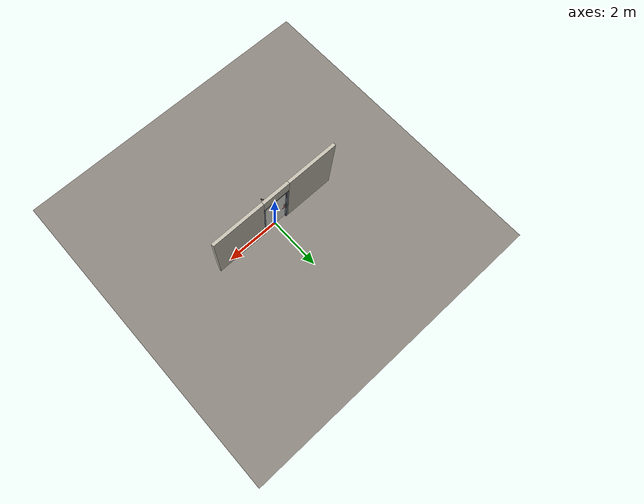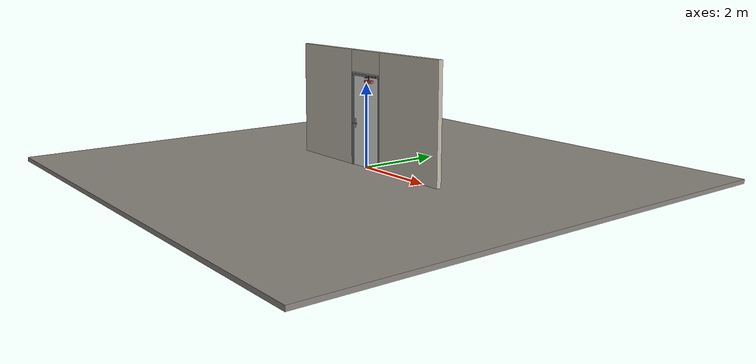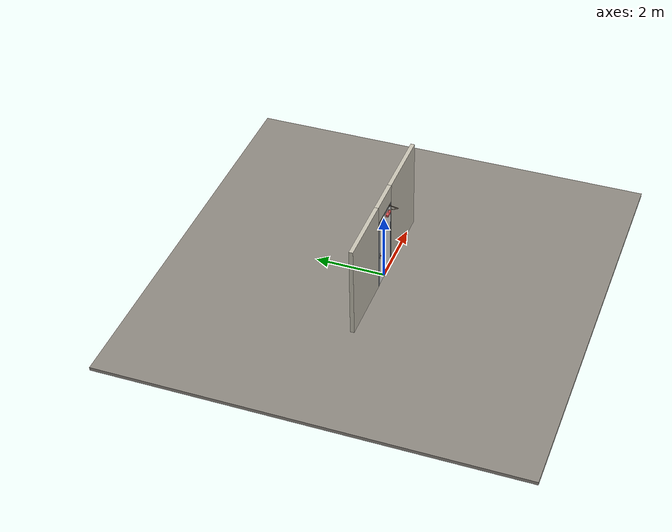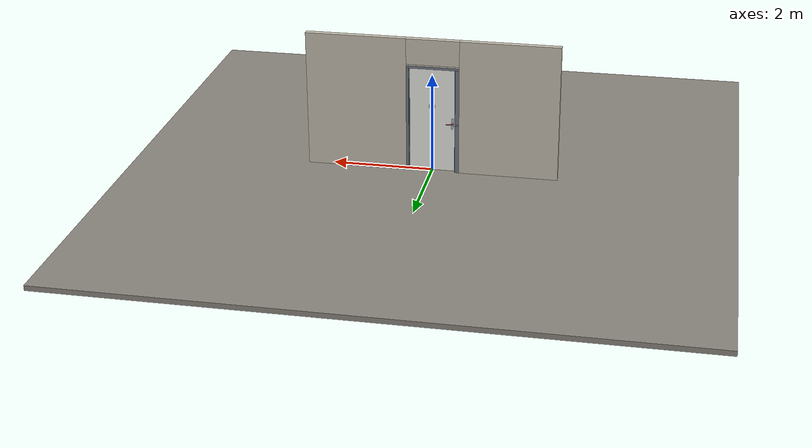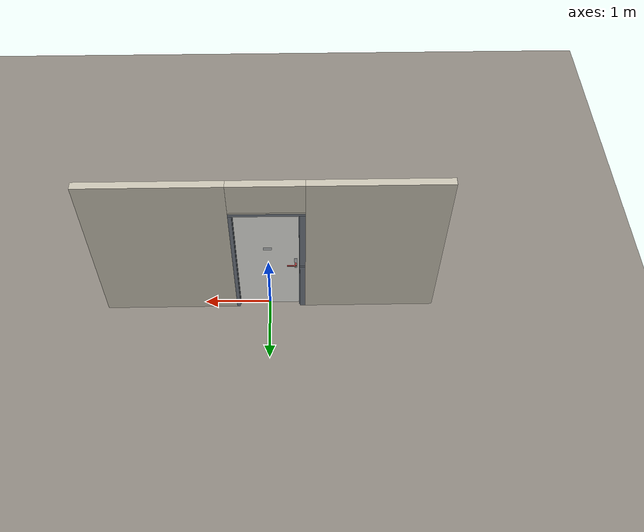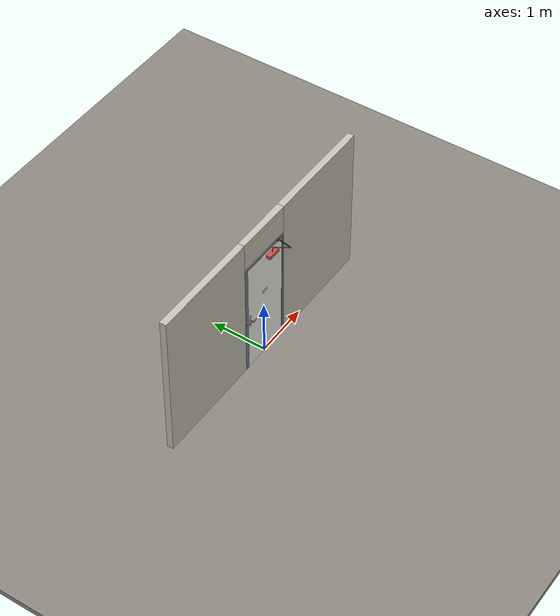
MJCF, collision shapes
<?xml version="1.0" ?>
<mujoco model="db0294_swing_single_full">
  <compiler angle="radian" meshdir="../../hardware" texturedir="../../textures" autolimits="true" inertiafromgeom="false"/>
  <option timestep="0.002" integrator="implicitfast" cone="elliptic" impratio="10" noslip_iterations="3">
    <flag multiccd="enable"/>
  </option>
  <size memory="16M"/>
  <default>
    <geom condim="4" solref="0.005 1" solimp="0.95 0.99 0.001"/>
    <joint solreflimit="0.005 1" solimplimit="0.95 0.99 0.001"/>
    <tendon solreflimit="0.005 1"/>
    <equality solref="0.002 1"/>
  </default>
  <visual>
    <headlight ambient="0.4 0.4 0.4" diffuse="0.7 0.7 0.7" specular="0.2 0.2 0.2"/>
    <quality shadowsize="4096"/>
    <map znear="0.01" zfar="60"/>
  </visual>
  <asset>
    <mesh name="closer_body_b226fdb10b" file="closer_body_b226fdb10b.obj"/>
    <mesh name="coat_hook_d622d37ad0" file="coat_hook_d622d37ad0.obj"/>
    <mesh name="hinge_e22b26c0c1" file="hinge_e22b26c0c1.obj"/>
    <mesh name="hinge_jamb_e1d088f8dc" file="hinge_jamb_e1d088f8dc.obj"/>
    <mesh name="lever_f913fc5b7b" file="lever_f913fc5b7b.obj"/>
    <material name="mat_floor" rgba="0.55 0.53 0.5 1" specular="0.2" shininess="0.15" reflectance="0"/>
    <material name="mat_wall" rgba="0.78 0.76 0.7 1" specular="0.2" shininess="0.1" reflectance="0"/>
    <material name="mat_leaf" rgba="0.93 0.93 0.91 1" specular="0.23" shininess="0.54" reflectance="0.02"/>
    <material name="mat_hinge" rgba="0.65 0.66 0.68 1" specular="0.74" shininess="0.5" reflectance="0.36"/>
    <material name="mat_op_stainless" rgba="0.75 0.76 0.77 1" specular="0.8" shininess="0.65" reflectance="0.4"/>
    <material name="mat_trim" rgba="0.85 0.66 0.3 1" specular="0.8" shininess="0.75" reflectance="0.4"/>
    <material name="mat_keyway" rgba="0.05 0.05 0.05 1" specular="0.2" shininess="0.5" reflectance="0"/>
    <material name="mat_bolt" rgba="0.75 0.76 0.77 1" specular="0.8" shininess="0.65" reflectance="0.4"/>
    <material name="mat_frame" rgba="0.45 0.48 0.52 1" specular="0.32" shininess="0.6" reflectance="0.08"/>
    <material name="mat_seal" rgba="0.1 0.1 0.1 1" specular="0.2" shininess="0.1" reflectance="0"/>
    <material name="mat_closer" rgba="0.22 0.17 0.13 1" specular="0.8" shininess="0.6" reflectance="0.4"/>
    <material name="mat_hook" rgba="0.9 0.9 0.92 1" specular="0.8" shininess="0.9" reflectance="0.4"/>
    <material name="mat_sign" rgba="0.75 0.76 0.77 1" specular="0.8" shininess="0.65" reflectance="0.4"/>
    <texture name="skybox" type="skybox" builtin="gradient" rgb1="0.6 0.7 0.85" rgb2="0.9 0.92 0.95" width="256" height="256"/>
  </asset>
  <worldbody>
    <light name="sun" pos="1.5 -2.5 4" dir="-0.3 0.5 -0.8" directional="true" diffuse="0.8 0.8 0.8" specular="0.3 0.3 0.3" castshadow="true"/>
    <light name="fill" pos="-1.5 2.5 3" dir="0.3 -0.5 -0.7" directional="true" diffuse="0.35 0.35 0.4" castshadow="false"/>
    <camera name="robot_view" pos="0 -2.609312 1.812087" xyaxes="1 0 0 0 0.26963 0.962964" fovy="52"/>
    <camera name="far_view" pos="0 2.666313 1.812087" xyaxes="-1 0 0 0 -0.26963 0.962964" fovy="52"/>
    <camera name="iso" pos="-2.004737 -2.187262 2.234138" xyaxes="0.741536 -0.670913 0 0.242917 0.268487 0.932151" fovy="46"/>
    <camera name="detail_handle" pos="-0.1175 -0.877 1.296" xyaxes="0.97561 0.219512 0 -0.070934 0.315262 0.94635" fovy="38"/>
    <geom name="floor" type="box" size="6 6 0.05" pos="0 0 -0.05" material="mat_floor" group="0" contype="1" conaffinity="1" friction="0.8 0.005 0.0001" density="2400"/>
    <geom name="wall_left" type="box" size="0.97975 0.0575 1.3735" pos="-1.52025 0.0285 1.3735" material="mat_wall" group="0" contype="1" conaffinity="1" friction="0.6 0.005 0.0001" density="800"/>
    <geom name="wall_right" type="box" size="0.99475 0.0575 1.3735" pos="1.50525 0.0285 1.3735" material="mat_wall" group="0" contype="1" conaffinity="1" friction="0.6 0.005 0.0001" density="800"/>
    <geom name="wall_header" type="box" size="0.5255 0.0575 0.26" pos="-0.015 0.0285 2.487" material="mat_wall" group="0" contype="1" conaffinity="1" friction="0.6 0.005 0.0001" density="800"/>
    <geom name="hinge_0_jamb" type="mesh" mesh="hinge_jamb_e1d088f8dc" pos="0.4575 -0.029 0.259" quat="0 0 1 0" material="mat_hinge" group="1" contype="0" conaffinity="0" density="7850"/>
    <geom name="hinge_1_jamb" type="mesh" mesh="hinge_jamb_e1d088f8dc" pos="0.4575 -0.029 1.076" quat="0 0 1 0" material="mat_hinge" group="1" contype="0" conaffinity="0" density="7850"/>
    <geom name="hinge_2_jamb" type="mesh" mesh="hinge_jamb_e1d088f8dc" pos="0.4575 -0.029 1.963" quat="0 0 1 0" material="mat_hinge" group="1" contype="0" conaffinity="0" density="7850"/>
    <geom name="jamb_hinge" type="box" size="0.025 0.0575 1.0735" pos="0.4855 0.0285 1.0735" material="mat_frame" group="0" contype="1" conaffinity="1" friction="0.6 0.005 0.0001" density="300"/>
    <geom name="strike_1016_wall_n" type="box" size="0.04 0.03975 0.015" pos="-0.5005 0.04625 1.016" material="mat_frame" group="0" contype="1" conaffinity="1" friction="0.6 0.005 0.0001" density="300"/>
    <geom name="strike_1016_wall_p" type="box" size="0.04 0.008 0.015" pos="-0.5005 -0.0145 1.016" material="mat_frame" group="0" contype="1" conaffinity="1" friction="0.6 0.005 0.0001" density="300"/>
    <geom name="strike_1016_ramp" type="box" size="0.04 0.016771 0.015" pos="-0.503777 -0.019611 1.016" quat="0.973249 0 0 -0.229753" material="mat_frame" group="0" contype="1" conaffinity="1" friction="0.12 0.005 0.0001" density="300"/>
    <geom name="strike_1016_back" type="box" size="0.031 0.0065 0.015" pos="-0.5095 0 1.016" material="mat_frame" group="0" contype="1" conaffinity="1" friction="0.6 0.005 0.0001" density="300"/>
    <geom name="jamb_strike_0" type="box" size="0.04 0.0575 0.5005" pos="-0.5005 0.0285 0.5005" material="mat_frame" group="0" contype="1" conaffinity="1" friction="0.6 0.005 0.0001" density="300"/>
    <geom name="jamb_strike_1" type="box" size="0.04 0.0575 0.558" pos="-0.5005 0.0285 1.589" material="mat_frame" group="0" contype="1" conaffinity="1" friction="0.6 0.005 0.0001" density="300"/>
    <geom name="jamb_head" type="box" size="0.5255 0.0575 0.025" pos="-0.015 0.0285 2.172" material="mat_frame" group="0" contype="1" conaffinity="1" friction="0.6 0.005 0.0001" density="300"/>
    <geom name="head_stud" type="box" size="0.5255 0.0575 0.015" pos="-0.015 0.0285 2.212" material="mat_wall" group="0" contype="1" conaffinity="1" friction="0.6 0.005 0.0001" density="500"/>
    <geom name="stop_hinge" type="box" size="0.0055 0.016 1.0735" pos="0.455 0.0385 1.0735" material="mat_frame" group="0" contype="1" conaffinity="1" friction="0.6 0.005 0.0001" density="300"/>
    <geom name="stop_strike" type="box" size="0.0055 0.016 1.0735" pos="-0.455 0.0385 1.0735" material="mat_frame" group="0" contype="1" conaffinity="1" friction="0.6 0.005 0.0001" density="300"/>
    <geom name="stop_head" type="box" size="0.4605 0.016 0.0055" pos="0 0.0385 2.1415" material="mat_frame" group="0" contype="1" conaffinity="1" friction="0.6 0.005 0.0001" density="300"/>
    <geom name="seal_hinge" type="box" size="0.004 0.002 1.0735" pos="0.4575 0.024 1.0735" material="mat_seal" group="1" contype="0" conaffinity="0" density="1100"/>
    <geom name="seal_strike" type="box" size="0.004 0.002 1.0735" pos="-0.4575 0.024 1.0735" material="mat_seal" group="1" contype="0" conaffinity="0" density="1100"/>
    <geom name="seal_head" type="box" size="0.4405 0.002 0.008" pos="0 0.024 2.135" material="mat_seal" group="1" contype="0" conaffinity="0" density="1100"/>
    <geom name="closer_bracket" type="box" size="0.03 0.012 0.014" pos="0.3605 -0.041 2.177" material="mat_closer" group="1" contype="0" conaffinity="0" density="2700"/>
    <site name="approach_point" pos="0 -1.5 0" quat="1 0 0 0" size="0.05" rgba="0.2 0.9 0.2 0.5" group="4"/>
    <site name="goal_point" pos="0 1.5 0" quat="1 0 0 0" size="0.05" rgba="0.2 0.9 0.2 0.5" group="4"/>
    <site name="door_plane_center" pos="0 0 1.0735" quat="1 0 0 0" size="0.02" rgba="0.2 0.9 0.2 0.5" group="4"/>
    <body name="leaf" pos="0.4605 0 0">
      <inertial pos="-0.426182 -0.011105 1.250569" mass="41.502629" quat="0.514453 -0.51337 -0.47667 -0.494546" diaginertia="2.617617394 18.746498977 21.313837637"/>
      <joint name="leaf_hinge" type="hinge" axis="0 0 1" pos="-0.003 -0.029 0" limited="true" range="0 1.745329" solreflimit="0.02 1" damping="10.268966" frictionloss="1.687732" stiffness="12.827888" springref="-1.543512" armature="0.02"/>
      <geom name="leaf_slab" type="box" size="0.457 0.022 1.067" pos="-0.46 0 1.076" material="mat_leaf" group="0" contype="1" conaffinity="1" friction="0.4 0.005 0.0001" density="1"/>
      <geom name="hinge_0" type="mesh" mesh="hinge_e22b26c0c1" pos="-0.003 -0.029 0.259" quat="0 0 1 0" material="mat_hinge" group="1" contype="0" conaffinity="0" density="7850"/>
      <geom name="hinge_1" type="mesh" mesh="hinge_e22b26c0c1" pos="-0.003 -0.029 1.076" quat="0 0 1 0" material="mat_hinge" group="1" contype="0" conaffinity="0" density="7850"/>
      <geom name="hinge_2" type="mesh" mesh="hinge_e22b26c0c1" pos="-0.003 -0.029 1.963" quat="0 0 1 0" material="mat_hinge" group="1" contype="0" conaffinity="0" density="7850"/>
      <geom name="leaf_handle_escutcheon_n" type="box" size="0.02 0.0015 0.11" pos="-0.862 -0.0235 1.016" material="mat_op_stainless" group="1" contype="0" conaffinity="0" density="3000"/>
      <geom name="leaf_handle_escutcheon_p" type="box" size="0.02 0.0015 0.11" pos="-0.862 0.0235 1.016" material="mat_op_stainless" group="1" contype="0" conaffinity="0" density="3000"/>
      <geom name="leaf_latch_bolt_faceplate" type="box" size="0.0006 0.011 0.025" pos="-0.9164 0 1.016" material="mat_bolt" group="1" contype="0" conaffinity="0" density="8500"/>
      <geom name="closer_body" type="mesh" mesh="closer_body_b226fdb10b" pos="-0.3 -0.022 2.054" quat="0 0 -0.707107 0.707107" material="mat_closer" group="1" contype="0" conaffinity="0" density="2000"/>
      <geom name="closer_body_col" type="box" size="0.12 0.04 0.03" pos="-0.3 -0.062 2.054" material="mat_closer" group="3" contype="1" conaffinity="1" rgba="0.8 0.3 0.3 0.25" friction="0.6 0.005 0.0001" density="2000"/>
      <geom name="closer_pinion_shaft" type="cylinder" size="0.008 0.0615" pos="-0.3 -0.064 2.1155" material="mat_closer" group="1" contype="0" conaffinity="0" density="2700"/>
      <geom name="coat_hook" type="mesh" mesh="coat_hook_d622d37ad0" pos="-0.46 0.022 1.793" quat="0 0 0.707107 0.707107" material="mat_hook" group="2" contype="0" conaffinity="0" density="7000"/>
      <geom name="sign_push" type="box" size="0.06 0.001 0.03" pos="-0.46 0.023 1.359" material="mat_sign" group="2" contype="0" conaffinity="0" density="7900"/>
      <geom name="sign_pull" type="box" size="0.06 0.001 0.03" pos="-0.46 -0.023 1.359" material="mat_sign" group="2" contype="0" conaffinity="0" density="7900"/>
      <site name="leaf_edge_mid" pos="-0.917 0 1.067" quat="1 0 0 0" size="0.02" rgba="0.2 0.9 0.2 0.5" group="4"/>
      <body name="leaf_handle" pos="-0.862 0 1.016">
        <inertial pos="0.037645 0.001201 0" mass="0.800353" quat="0.713205 0 0 -0.700956" diaginertia="0.001586189 0.003675619 0.005221501"/>
        <joint name="leaf_handle_hinge" type="hinge" axis="0 1 0" limited="true" range="0 0.65" damping="0.225575" frictionloss="0.051863" stiffness="1" springref="-0.503022" armature="0.01"/>
        <geom name="leaf_handle_spindle" type="cylinder" size="0.006 0.034" pos="0 0 0" quat="0.707107 -0.707107 0 0" material="mat_op_stainless" group="1" contype="0" conaffinity="0" density="7850"/>
        <geom name="leaf_handle_lever_n" type="mesh" mesh="lever_f913fc5b7b" pos="0 -0.022 0" quat="0 0 -0.707107 0.707107" material="mat_op_stainless" group="1" contype="0" conaffinity="0" density="3000"/>
        <geom name="leaf_handle_lever_col_n" type="capsule" size="0.0095 0.0555" pos="0.065 -0.077 0" quat="0.707107 0 0.707107 0" material="mat_op_stainless" group="3" contype="1" conaffinity="1" rgba="0.8 0.3 0.3 0.25" friction="0.7 0.01 0.0001" density="3000"/>
        <geom name="leaf_handle_hub_col_n" type="cylinder" size="0.012 0.022" pos="0 -0.052 0" quat="0.707107 -0.707107 0 0" material="mat_op_stainless" group="3" contype="1" conaffinity="1" rgba="0.8 0.3 0.3 0.25" friction="0.6 0.005 0.0001" density="3000"/>
        <geom name="leaf_handle_turn_button_n" type="cylinder" size="0.006 0.005" pos="0 -0.0875 0" quat="0.707107 -0.707107 0 0" material="mat_trim" group="1" contype="0" conaffinity="0" density="7100"/>
        <geom name="leaf_handle_lever_p" type="mesh" mesh="lever_f913fc5b7b" pos="0 0.022 0" quat="0 0 0.707107 0.707107" material="mat_op_stainless" group="1" contype="0" conaffinity="0" density="3000"/>
        <geom name="leaf_handle_lever_col_p" type="capsule" size="0.0095 0.0555" pos="0.065 0.077 0" quat="0.707107 0 0.707107 0" material="mat_op_stainless" group="3" contype="1" conaffinity="1" rgba="0.8 0.3 0.3 0.25" friction="0.7 0.01 0.0001" density="3000"/>
        <geom name="leaf_handle_hub_col_p" type="cylinder" size="0.012 0.022" pos="0 0.052 0" quat="0.707107 -0.707107 0 0" material="mat_op_stainless" group="3" contype="1" conaffinity="1" rgba="0.8 0.3 0.3 0.25" friction="0.6 0.005 0.0001" density="3000"/>
        <geom name="leaf_handle_cylinder_p" type="cylinder" size="0.0085 0.006" pos="0 0.0845 0" quat="0.707107 -0.707107 0 0" material="mat_trim" group="1" contype="0" conaffinity="0" density="7100"/>
        <geom name="leaf_handle_keyway_p" type="box" size="0.0012 0.0008 0.006" pos="0 0.091 0" material="mat_keyway" group="1" contype="0" conaffinity="0" density="7100"/>
        <site name="leaf_handle_grip_n" pos="0.104 -0.077 0" quat="1 0 0 0" size="0.012" rgba="0.2 0.9 0.2 0.5" group="4"/>
        <site name="leaf_handle_grip_p" pos="0.104 0.077 0" quat="1 0 0 0" size="0.012" rgba="0.2 0.9 0.2 0.5" group="4"/>
      </body>
      <body name="leaf_latch_bolt" pos="-0.917 0 1.016">
        <inertial pos="0.008 0 0" mass="0.027149" quat="0 0 -0.707107 0.707107" diaginertia="0.000000328 0.000003943 0.000003943"/>
        <joint name="leaf_latch_bolt_slide" type="slide" axis="1 0 0" limited="true" range="0 0.014" damping="2" frictionloss="0.3" stiffness="400" springref="-0.01" armature="0.1"/>
        <geom name="leaf_latch_bolt_capsule" type="capsule" size="0.005 0.017" pos="0.008 0 0" quat="0.707107 0 -0.707107 0" material="mat_bolt" group="0" contype="1" conaffinity="1" friction="0.2 0.005 0.0001" density="8500"/>
      </body>
      <body name="closer_arm_main" pos="-0.3 -0.064 2.177" quat="0.881485 0 0 -0.472212">
        <inertial pos="0.14 0 0" mass="0.12096" quat="1 0 0 0" diaginertia="0.000003588 0.00079128 0.000792852"/>
        <joint name="closer_pinion" type="hinge" axis="0 0 1" limited="false" damping="0.01" armature="0.002"/>
        <geom name="closer_arm_main_geom" type="box" size="0.14 0.008 0.005" pos="0.14 0 0" material="mat_closer" group="1" contype="0" conaffinity="0" density="2700"/>
        <body name="closer_arm_fore" pos="0.28 0 0" quat="0.371222 0 0 0.928544">
          <inertial pos="0.128088 0 0" mass="0.076531" quat="1 0 0 0" diaginertia="0.000001771 0.000437665 0.000438201"/>
          <joint name="closer_elbow" type="hinge" axis="0 0 1" limited="false" damping="0.01" armature="0.002"/>
          <geom name="closer_arm_fore_geom" type="box" size="0.1125 0.007 0.004" pos="0.1125 0 0" material="mat_closer" group="1" contype="0" conaffinity="0" density="2700"/>
          <geom name="closer_fore_neck" type="box" size="0.0175 0.003 0.003" pos="0.2425 0 0" material="mat_closer" group="1" contype="0" conaffinity="0" density="2700"/>
          <geom name="closer_fore_pivot" type="cylinder" size="0.005 0.012" pos="0.26 0 0" material="mat_closer" group="1" contype="0" conaffinity="0" density="2700"/>
        </body>
      </body>
    </body>
  </worldbody>
  <tendon>
    <fixed name="leaf_latch_bolt_coupling" limited="true" range="0 10">
      <joint joint="leaf_latch_bolt_slide" coef="1"/>
      <joint joint="leaf_handle_hinge" coef="-0.022951"/>
    </fixed>
  </tendon>
  <equality>
    <connect name="closer_arm_connect" body1="closer_arm_fore" body2="world" anchor="0.26 0 0" active="true"/>
  </equality>
  <contact>
    <exclude body1="closer_arm_main" body2="leaf"/>
    <exclude body1="closer_arm_fore" body2="leaf"/>
    <exclude body1="closer_arm_main" body2="closer_arm_fore"/>
  </contact>
  <sensor>
    <jointpos name="leaf_hinge_pos" joint="leaf_hinge"/>
    <jointvel name="leaf_hinge_vel" joint="leaf_hinge"/>
    <jointpos name="leaf_handle_hinge_pos" joint="leaf_handle_hinge"/>
    <jointvel name="leaf_handle_hinge_vel" joint="leaf_handle_hinge"/>
    <jointpos name="leaf_latch_bolt_slide_pos" joint="leaf_latch_bolt_slide"/>
    <jointvel name="leaf_latch_bolt_slide_vel" joint="leaf_latch_bolt_slide"/>
  </sensor>
</mujoco>
